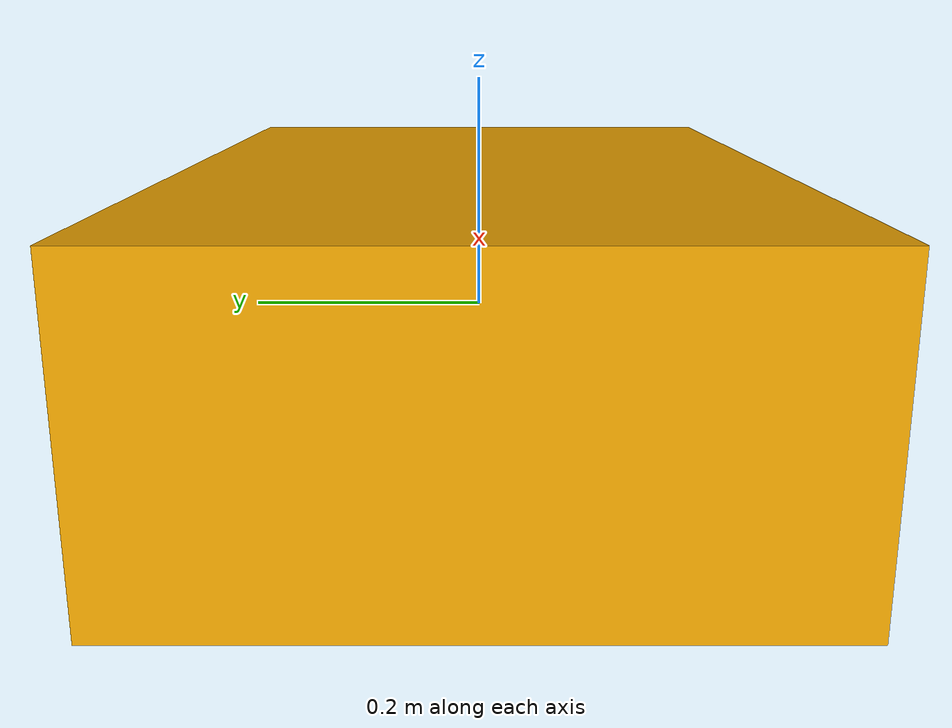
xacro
<?xml version="1.0"?>
<robot xmlns:xacro="http://www.ros.org/wiki/xacro" name="campus_robot">

  <link name="base_link">
    <visual>
      <geometry>
        <box size="0.70 0.50 0.25"/>
      </geometry>
    </visual>

    <collision>
      <geometry>
        <box size="0.70 0.50 0.25"/>
      </geometry>
    </collision>

    <inertial>
      <mass value="25.0"/>
      <origin xyz="0 0 0"/>
      <inertia
        ixx="0.60"
        ixy="0"
        ixz="0"
        iyy="0.90"
        iyz="0"
        izz="1.10"/>
    </inertial>
  </link>

  <link name="laser_link"/>

  <joint name="laser_joint" type="fixed">
    <parent link="base_link"/>
    <child link="laser_link"/>
    <origin xyz="0.20 0 0.20" rpy="0 0 0"/>
  </joint>

</robot>
